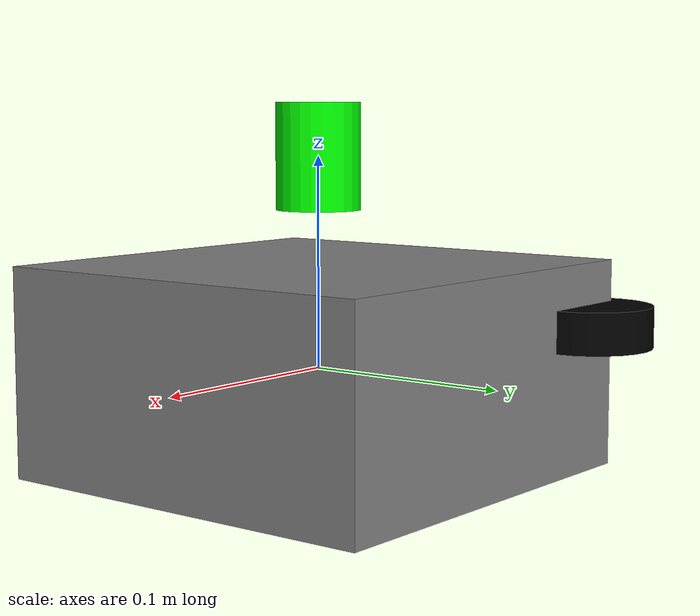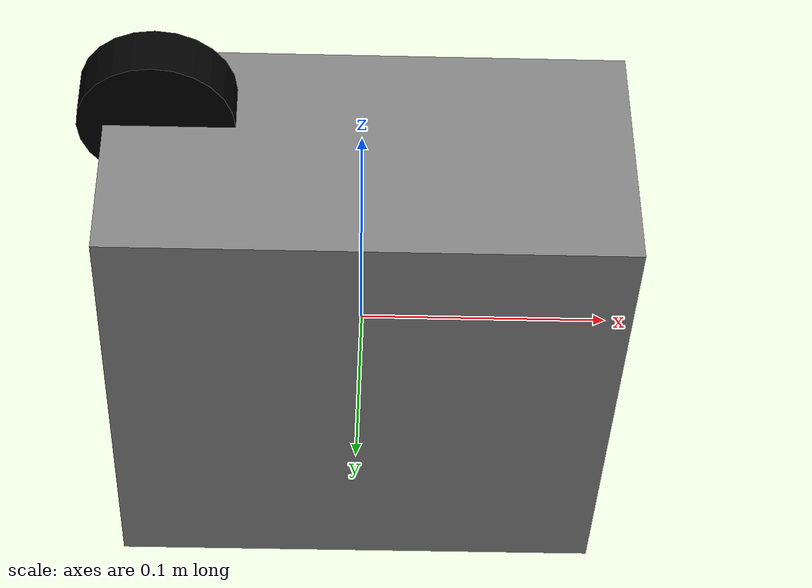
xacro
<robot name="tb3_minimal">
  <link name="base_link">

  <!-- === Cart-style fixed visual wheels and decorations === -->

  <!-- Front Left Wheel -->
  <link name="wheel_fl">
    <visual>
      <origin xyz="0.1 0.1 0.03" rpy="1.5708 0 0"/>
      <geometry><cylinder radius="0.03" length="0.02"/></geometry>
      <material name="white"/>
    </visual>
  </link>
  <joint name="fixed_wheel_fl" type="fixed">
    <parent link="base_link"/>
    <child link="wheel_fl"/>
  </joint>

  <!-- Front Right Wheel -->
  <link name="wheel_fr">
    <visual>
      <origin xyz="0.1 -0.1 0.03" rpy="1.5708 0 0"/>
      <geometry><cylinder radius="0.03" length="0.02"/></geometry>
      <material name="white"/>
    </visual>
  </link>
  <joint name="fixed_wheel_fr" type="fixed">
    <parent link="base_link"/>
    <child link="wheel_fr"/>
  </joint>

  <!-- Rear Left Wheel -->
  <link name="wheel_rl">
    <visual>
      <origin xyz="-0.1 0.1 0.03" rpy="1.5708 0 0"/>
      <geometry><cylinder radius="0.03" length="0.02"/></geometry>
      <material name="white"/>
    </visual>
  </link>
  <joint name="fixed_wheel_rl" type="fixed">
    <parent link="base_link"/>
    <child link="wheel_rl"/>
  </joint>

  <!-- Rear Right Wheel -->
  <link name="wheel_rr">
    <visual>
      <origin xyz="-0.1 -0.1 0.03" rpy="1.5708 0 0"/>
      <geometry><cylinder radius="0.03" length="0.02"/></geometry>
      <material name="white"/>
    </visual>
  </link>
  <joint name="fixed_wheel_rr" type="fixed">
    <parent link="base_link"/>
    <child link="wheel_rr"/>
  </joint>

  <!-- Top Sensor -->
  <link name="lidar_link">
    <visual>
      <origin xyz="0.08 0 0.12" rpy="0 0 0"/>
      <geometry><cylinder radius="0.015" length="0.04"/></geometry>
      <material name="black"/>
    </visual>
  </link>
  <joint name="fixed_lidar" type="fixed">
    <parent link="base_link"/>
    <child link="lidar_link"/>
  </joint>

  <!-- Rear Port -->
  <link name="rear_port">
    <visual>
      <origin xyz="-0.1 0 0.07" rpy="0 0 0"/>
      <geometry><box size="0.03 0.03 0.03"/></geometry>
      <material name="red"/>
    </visual>
  </link>
  <joint name="fixed_rear_port" type="fixed">
    <parent link="base_link"/>
    <child link="rear_port"/>
  </joint>
    <visual>
      <geometry><box size="0.2 0.2 0.1"/></geometry>
      <material name="gray"><color rgba="0.5 0.5 0.5 1"/></material>
    </visual>
  </link>

  <joint name="laser_joint" type="fixed">
    <parent link="base_link"/>
    <child link="laser"/>
    <origin xyz="0 0 0.1" rpy="0 0 0"/>
  </joint>

  <link name="laser">
    <visual>
      <geometry><cylinder length="0.05" radius="0.02"/></geometry>
      <material name="green"><color rgba="0 1 0 1"/></material>
    </visual>
  </link>

  <!-- 바퀴 시각화용 링크 -->
  <link name="wheel_left">
    <visual>
      <origin xyz="-0.08 0.10 0.02" rpy="0 0 0"/>
      <geometry>
        <cylinder radius="0.03" length="0.02"/>
      </geometry>
      <material name="black"><color rgba="0 0 0 1"/></material>
    </visual>
  </link>

  <link name="wheel_right">
    <visual>
      <origin xyz="-0.08 -0.10 0.02" rpy="0 0 0"/>
      <geometry>
        <cylinder radius="0.03" length="0.02"/>
      </geometry>
      <material name="black"><color rgba="0 0 0 1"/></material>
    </visual>
  </link>

  <!-- base_link에 고정 -->
  <joint name="fixed_wheel_left" type="fixed">
    <parent link="base_link"/>
    <child link="wheel_left"/>
  </joint>

  <joint name="fixed_wheel_right" type="fixed">
    <parent link="base_link"/>
    <child link="wheel_right"/>
  </joint>
</robot>
